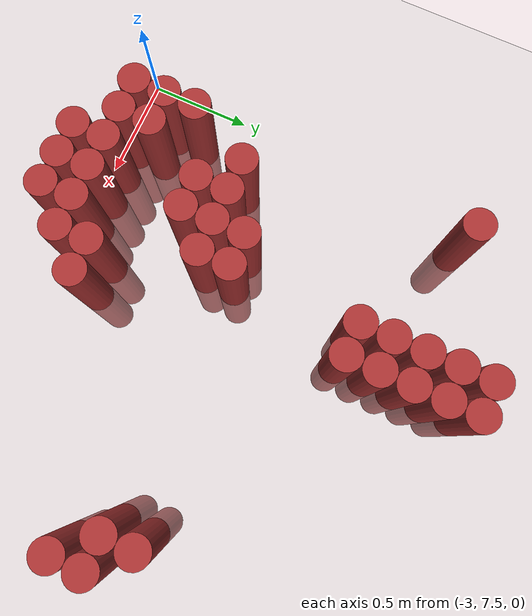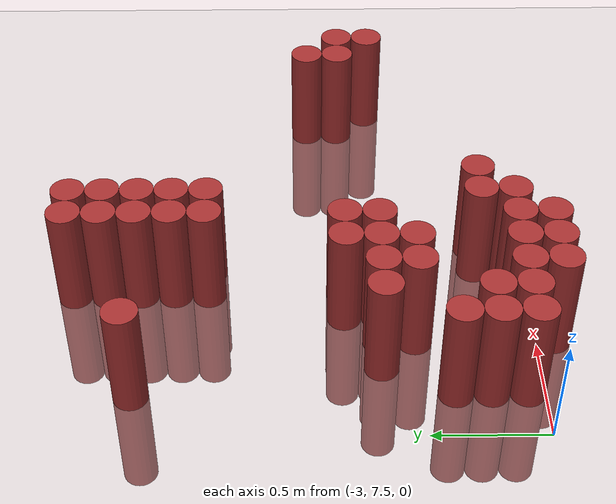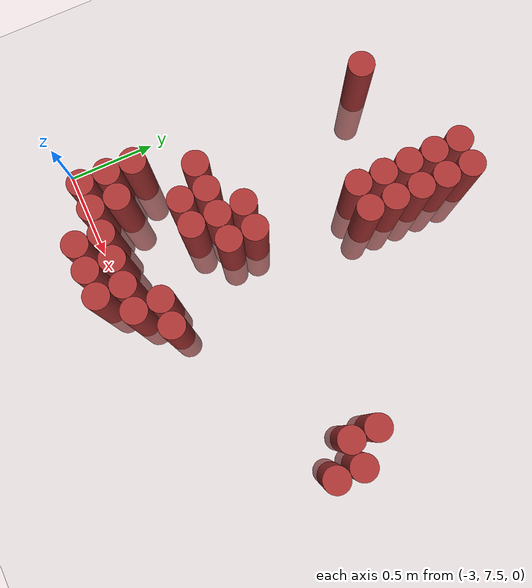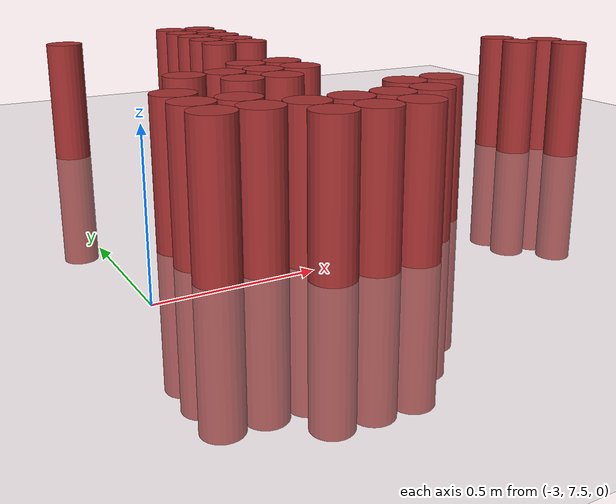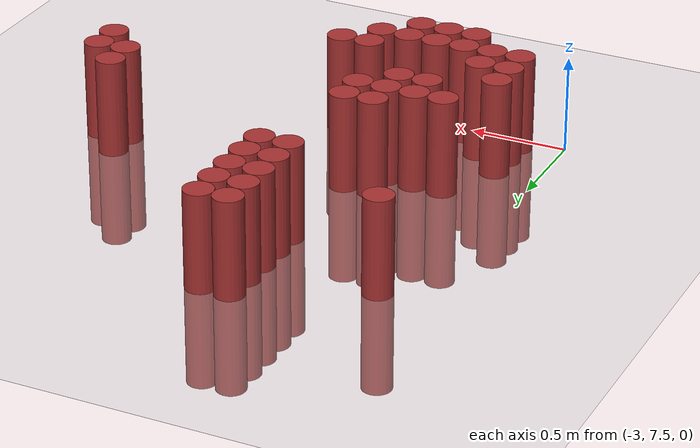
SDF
<sdf version="1.6">
 <world name="default">
  <model name="ground_plane">
   <static>1</static>
   <link name="link">
    <collision name="collision">
     <geometry><plane><normal>0 0 1</normal><size>100 100</size></plane></geometry>
     <surface><friction><ode><mu>100</mu><mu2>50</mu2></ode></friction></surface>
    </collision>
    <visual name="visual">
     <cast_shadows>0</cast_shadows>
     <geometry><plane><normal>0 0 1</normal><size>100 100</size></plane></geometry>
     <material>
      <script><uri>file://media/materials/scripts/gazebo.material</uri><name>Gazebo/Grey</name></script>
     </material>
    </visual>
   </link>
  </model>
  <model name="unit_cylinder_188">
   <static>1</static>
   <pose>-2.775000 7.575000 0.000000 0.000000 0.000000 0.000000</pose>
   <link name="link">
    <inertial>
     <mass>1</mass>
     <inertia><ixx>0.145833</ixx><ixy>0</ixy><ixz>0</ixz><iyy>0.145833</iyy><iyz>0</iyz><izz>0.125</izz></inertia>
    </inertial>
    <collision name="collision">
     <geometry><cylinder><radius>0.075000</radius><length>1</length></cylinder></geometry>
    </collision>
    <visual name="visual">
     <geometry><cylinder><radius>0.075000</radius><length>1</length></cylinder></geometry>
     <material>
      <ambient>0.648000 0.192000 0.192000 1</ambient>
      <diffuse>0.648000 0.192000 0.192000 1</diffuse>
     </material>
     <material>
      <script><name>Gazebo/Grey</name><uri>file://media/materials/scripts/gazebo.material</uri></script>
     </material>
    </visual>
    <sensor name="sensor_contact" type="contact"><contact><collision>collision</collision></contact></sensor>
   </link>
   <plugin filename="gz-sim-touchplugin-system" name="gz::sim::systems::TouchPlugin">
    <target>robot</target>
    <namespace>robot</namespace>
    <time>0.001</time>
    <enabled>true</enabled>
   </plugin>
  </model>
  <model name="unit_cylinder_189">
   <static>1</static>
   <pose>-2.775000 7.725000 0.000000 0.000000 0.000000 0.000000</pose>
   <link name="link">
    <inertial>
     <mass>1</mass>
     <inertia><ixx>0.145833</ixx><ixy>0</ixy><ixz>0</ixz><iyy>0.145833</iyy><iyz>0</iyz><izz>0.125</izz></inertia>
    </inertial>
    <collision name="collision">
     <geometry><cylinder><radius>0.075000</radius><length>1</length></cylinder></geometry>
    </collision>
    <visual name="visual">
     <geometry><cylinder><radius>0.075000</radius><length>1</length></cylinder></geometry>
     <material>
      <ambient>0.648000 0.192000 0.192000 1</ambient>
      <diffuse>0.648000 0.192000 0.192000 1</diffuse>
     </material>
     <material>
      <script><name>Gazebo/Grey</name><uri>file://media/materials/scripts/gazebo.material</uri></script>
     </material>
    </visual>
    <sensor name="sensor_contact" type="contact"><contact><collision>collision</collision></contact></sensor>
   </link>
   <plugin filename="gz-sim-touchplugin-system" name="gz::sim::systems::TouchPlugin">
    <target>robot</target>
    <namespace>robot</namespace>
    <time>0.001</time>
    <enabled>true</enabled>
   </plugin>
  </model>
  <model name="unit_cylinder_190">
   <static>1</static>
   <pose>-2.775000 7.875000 0.000000 0.000000 0.000000 0.000000</pose>
   <link name="link">
    <inertial>
     <mass>1</mass>
     <inertia><ixx>0.145833</ixx><ixy>0</ixy><ixz>0</ixz><iyy>0.145833</iyy><iyz>0</iyz><izz>0.125</izz></inertia>
    </inertial>
    <collision name="collision">
     <geometry><cylinder><radius>0.075000</radius><length>1</length></cylinder></geometry>
    </collision>
    <visual name="visual">
     <geometry><cylinder><radius>0.075000</radius><length>1</length></cylinder></geometry>
     <material>
      <ambient>0.648000 0.192000 0.192000 1</ambient>
      <diffuse>0.648000 0.192000 0.192000 1</diffuse>
     </material>
     <material>
      <script><name>Gazebo/Grey</name><uri>file://media/materials/scripts/gazebo.material</uri></script>
     </material>
    </visual>
    <sensor name="sensor_contact" type="contact"><contact><collision>collision</collision></contact></sensor>
   </link>
   <plugin filename="gz-sim-touchplugin-system" name="gz::sim::systems::TouchPlugin">
    <target>robot</target>
    <namespace>robot</namespace>
    <time>0.001</time>
    <enabled>true</enabled>
   </plugin>
  </model>
  <model name="unit_cylinder_191">
   <static>1</static>
   <pose>-2.775000 9.225000 0.000000 0.000000 0.000000 0.000000</pose>
   <link name="link">
    <inertial>
     <mass>1</mass>
     <inertia><ixx>0.145833</ixx><ixy>0</ixy><ixz>0</ixz><iyy>0.145833</iyy><iyz>0</iyz><izz>0.125</izz></inertia>
    </inertial>
    <collision name="collision">
     <geometry><cylinder><radius>0.075000</radius><length>1</length></cylinder></geometry>
    </collision>
    <visual name="visual">
     <geometry><cylinder><radius>0.075000</radius><length>1</length></cylinder></geometry>
     <material>
      <ambient>0.648000 0.192000 0.192000 1</ambient>
      <diffuse>0.648000 0.192000 0.192000 1</diffuse>
     </material>
     <material>
      <script><name>Gazebo/Grey</name><uri>file://media/materials/scripts/gazebo.material</uri></script>
     </material>
    </visual>
    <sensor name="sensor_contact" type="contact"><contact><collision>collision</collision></contact></sensor>
   </link>
   <plugin filename="gz-sim-touchplugin-system" name="gz::sim::systems::TouchPlugin">
    <target>robot</target>
    <namespace>robot</namespace>
    <time>0.001</time>
    <enabled>true</enabled>
   </plugin>
  </model>
  <model name="unit_cylinder_195">
   <static>1</static>
   <pose>-2.625000 7.575000 0.000000 0.000000 0.000000 0.000000</pose>
   <link name="link">
    <inertial>
     <mass>1</mass>
     <inertia><ixx>0.145833</ixx><ixy>0</ixy><ixz>0</ixz><iyy>0.145833</iyy><iyz>0</iyz><izz>0.125</izz></inertia>
    </inertial>
    <collision name="collision">
     <geometry><cylinder><radius>0.075000</radius><length>1</length></cylinder></geometry>
    </collision>
    <visual name="visual">
     <geometry><cylinder><radius>0.075000</radius><length>1</length></cylinder></geometry>
     <material>
      <ambient>0.648000 0.192000 0.192000 1</ambient>
      <diffuse>0.648000 0.192000 0.192000 1</diffuse>
     </material>
     <material>
      <script><name>Gazebo/Grey</name><uri>file://media/materials/scripts/gazebo.material</uri></script>
     </material>
    </visual>
    <sensor name="sensor_contact" type="contact"><contact><collision>collision</collision></contact></sensor>
   </link>
   <plugin filename="gz-sim-touchplugin-system" name="gz::sim::systems::TouchPlugin">
    <target>robot</target>
    <namespace>robot</namespace>
    <time>0.001</time>
    <enabled>true</enabled>
   </plugin>
  </model>
  <model name="unit_cylinder_196">
   <static>1</static>
   <pose>-2.625000 7.725000 0.000000 0.000000 0.000000 0.000000</pose>
   <link name="link">
    <inertial>
     <mass>1</mass>
     <inertia><ixx>0.145833</ixx><ixy>0</ixy><ixz>0</ixz><iyy>0.145833</iyy><iyz>0</iyz><izz>0.125</izz></inertia>
    </inertial>
    <collision name="collision">
     <geometry><cylinder><radius>0.075000</radius><length>1</length></cylinder></geometry>
    </collision>
    <visual name="visual">
     <geometry><cylinder><radius>0.075000</radius><length>1</length></cylinder></geometry>
     <material>
      <ambient>0.648000 0.192000 0.192000 1</ambient>
      <diffuse>0.648000 0.192000 0.192000 1</diffuse>
     </material>
     <material>
      <script><name>Gazebo/Grey</name><uri>file://media/materials/scripts/gazebo.material</uri></script>
     </material>
    </visual>
    <sensor name="sensor_contact" type="contact"><contact><collision>collision</collision></contact></sensor>
   </link>
   <plugin filename="gz-sim-touchplugin-system" name="gz::sim::systems::TouchPlugin">
    <target>robot</target>
    <namespace>robot</namespace>
    <time>0.001</time>
    <enabled>true</enabled>
   </plugin>
  </model>
  <model name="unit_cylinder_197">
   <static>1</static>
   <pose>-2.625000 8.175000 0.000000 0.000000 0.000000 0.000000</pose>
   <link name="link">
    <inertial>
     <mass>1</mass>
     <inertia><ixx>0.145833</ixx><ixy>0</ixy><ixz>0</ixz><iyy>0.145833</iyy><iyz>0</iyz><izz>0.125</izz></inertia>
    </inertial>
    <collision name="collision">
     <geometry><cylinder><radius>0.075000</radius><length>1</length></cylinder></geometry>
    </collision>
    <visual name="visual">
     <geometry><cylinder><radius>0.075000</radius><length>1</length></cylinder></geometry>
     <material>
      <ambient>0.648000 0.192000 0.192000 1</ambient>
      <diffuse>0.648000 0.192000 0.192000 1</diffuse>
     </material>
     <material>
      <script><name>Gazebo/Grey</name><uri>file://media/materials/scripts/gazebo.material</uri></script>
     </material>
    </visual>
    <sensor name="sensor_contact" type="contact"><contact><collision>collision</collision></contact></sensor>
   </link>
   <plugin filename="gz-sim-touchplugin-system" name="gz::sim::systems::TouchPlugin">
    <target>robot</target>
    <namespace>robot</namespace>
    <time>0.001</time>
    <enabled>true</enabled>
   </plugin>
  </model>
  <model name="unit_cylinder_201">
   <static>1</static>
   <pose>-2.475000 7.425000 0.000000 0.000000 0.000000 0.000000</pose>
   <link name="link">
    <inertial>
     <mass>1</mass>
     <inertia><ixx>0.145833</ixx><ixy>0</ixy><ixz>0</ixz><iyy>0.145833</iyy><iyz>0</iyz><izz>0.125</izz></inertia>
    </inertial>
    <collision name="collision">
     <geometry><cylinder><radius>0.075000</radius><length>1</length></cylinder></geometry>
    </collision>
    <visual name="visual">
     <geometry><cylinder><radius>0.075000</radius><length>1</length></cylinder></geometry>
     <material>
      <ambient>0.648000 0.192000 0.192000 1</ambient>
      <diffuse>0.648000 0.192000 0.192000 1</diffuse>
     </material>
     <material>
      <script><name>Gazebo/Grey</name><uri>file://media/materials/scripts/gazebo.material</uri></script>
     </material>
    </visual>
    <sensor name="sensor_contact" type="contact"><contact><collision>collision</collision></contact></sensor>
   </link>
   <plugin filename="gz-sim-touchplugin-system" name="gz::sim::systems::TouchPlugin">
    <target>robot</target>
    <namespace>robot</namespace>
    <time>0.001</time>
    <enabled>true</enabled>
   </plugin>
  </model>
  <model name="unit_cylinder_202">
   <static>1</static>
   <pose>-2.475000 7.575000 0.000000 0.000000 0.000000 0.000000</pose>
   <link name="link">
    <inertial>
     <mass>1</mass>
     <inertia><ixx>0.145833</ixx><ixy>0</ixy><ixz>0</ixz><iyy>0.145833</iyy><iyz>0</iyz><izz>0.125</izz></inertia>
    </inertial>
    <collision name="collision">
     <geometry><cylinder><radius>0.075000</radius><length>1</length></cylinder></geometry>
    </collision>
    <visual name="visual">
     <geometry><cylinder><radius>0.075000</radius><length>1</length></cylinder></geometry>
     <material>
      <ambient>0.648000 0.192000 0.192000 1</ambient>
      <diffuse>0.648000 0.192000 0.192000 1</diffuse>
     </material>
     <material>
      <script><name>Gazebo/Grey</name><uri>file://media/materials/scripts/gazebo.material</uri></script>
     </material>
    </visual>
    <sensor name="sensor_contact" type="contact"><contact><collision>collision</collision></contact></sensor>
   </link>
   <plugin filename="gz-sim-touchplugin-system" name="gz::sim::systems::TouchPlugin">
    <target>robot</target>
    <namespace>robot</namespace>
    <time>0.001</time>
    <enabled>true</enabled>
   </plugin>
  </model>
  <model name="unit_cylinder_203">
   <static>1</static>
   <pose>-2.475000 8.025000 0.000000 0.000000 0.000000 0.000000</pose>
   <link name="link">
    <inertial>
     <mass>1</mass>
     <inertia><ixx>0.145833</ixx><ixy>0</ixy><ixz>0</ixz><iyy>0.145833</iyy><iyz>0</iyz><izz>0.125</izz></inertia>
    </inertial>
    <collision name="collision">
     <geometry><cylinder><radius>0.075000</radius><length>1</length></cylinder></geometry>
    </collision>
    <visual name="visual">
     <geometry><cylinder><radius>0.075000</radius><length>1</length></cylinder></geometry>
     <material>
      <ambient>0.648000 0.192000 0.192000 1</ambient>
      <diffuse>0.648000 0.192000 0.192000 1</diffuse>
     </material>
     <material>
      <script><name>Gazebo/Grey</name><uri>file://media/materials/scripts/gazebo.material</uri></script>
     </material>
    </visual>
    <sensor name="sensor_contact" type="contact"><contact><collision>collision</collision></contact></sensor>
   </link>
   <plugin filename="gz-sim-touchplugin-system" name="gz::sim::systems::TouchPlugin">
    <target>robot</target>
    <namespace>robot</namespace>
    <time>0.001</time>
    <enabled>true</enabled>
   </plugin>
  </model>
  <model name="unit_cylinder_204">
   <static>1</static>
   <pose>-2.475000 8.175000 0.000000 0.000000 0.000000 0.000000</pose>
   <link name="link">
    <inertial>
     <mass>1</mass>
     <inertia><ixx>0.145833</ixx><ixy>0</ixy><ixz>0</ixz><iyy>0.145833</iyy><iyz>0</iyz><izz>0.125</izz></inertia>
    </inertial>
    <collision name="collision">
     <geometry><cylinder><radius>0.075000</radius><length>1</length></cylinder></geometry>
    </collision>
    <visual name="visual">
     <geometry><cylinder><radius>0.075000</radius><length>1</length></cylinder></geometry>
     <material>
      <ambient>0.648000 0.192000 0.192000 1</ambient>
      <diffuse>0.648000 0.192000 0.192000 1</diffuse>
     </material>
     <material>
      <script><name>Gazebo/Grey</name><uri>file://media/materials/scripts/gazebo.material</uri></script>
     </material>
    </visual>
    <sensor name="sensor_contact" type="contact"><contact><collision>collision</collision></contact></sensor>
   </link>
   <plugin filename="gz-sim-touchplugin-system" name="gz::sim::systems::TouchPlugin">
    <target>robot</target>
    <namespace>robot</namespace>
    <time>0.001</time>
    <enabled>true</enabled>
   </plugin>
  </model>
  <model name="unit_cylinder_208">
   <static>1</static>
   <pose>-2.325000 7.425000 0.000000 0.000000 0.000000 0.000000</pose>
   <link name="link">
    <inertial>
     <mass>1</mass>
     <inertia><ixx>0.145833</ixx><ixy>0</ixy><ixz>0</ixz><iyy>0.145833</iyy><iyz>0</iyz><izz>0.125</izz></inertia>
    </inertial>
    <collision name="collision">
     <geometry><cylinder><radius>0.075000</radius><length>1</length></cylinder></geometry>
    </collision>
    <visual name="visual">
     <geometry><cylinder><radius>0.075000</radius><length>1</length></cylinder></geometry>
     <material>
      <ambient>0.648000 0.192000 0.192000 1</ambient>
      <diffuse>0.648000 0.192000 0.192000 1</diffuse>
     </material>
     <material>
      <script><name>Gazebo/Grey</name><uri>file://media/materials/scripts/gazebo.material</uri></script>
     </material>
    </visual>
    <sensor name="sensor_contact" type="contact"><contact><collision>collision</collision></contact></sensor>
   </link>
   <plugin filename="gz-sim-touchplugin-system" name="gz::sim::systems::TouchPlugin">
    <target>robot</target>
    <namespace>robot</namespace>
    <time>0.001</time>
    <enabled>true</enabled>
   </plugin>
  </model>
  <model name="unit_cylinder_209">
   <static>1</static>
   <pose>-2.325000 7.575000 0.000000 0.000000 0.000000 0.000000</pose>
   <link name="link">
    <inertial>
     <mass>1</mass>
     <inertia><ixx>0.145833</ixx><ixy>0</ixy><ixz>0</ixz><iyy>0.145833</iyy><iyz>0</iyz><izz>0.125</izz></inertia>
    </inertial>
    <collision name="collision">
     <geometry><cylinder><radius>0.075000</radius><length>1</length></cylinder></geometry>
    </collision>
    <visual name="visual">
     <geometry><cylinder><radius>0.075000</radius><length>1</length></cylinder></geometry>
     <material>
      <ambient>0.648000 0.192000 0.192000 1</ambient>
      <diffuse>0.648000 0.192000 0.192000 1</diffuse>
     </material>
     <material>
      <script><name>Gazebo/Grey</name><uri>file://media/materials/scripts/gazebo.material</uri></script>
     </material>
    </visual>
    <sensor name="sensor_contact" type="contact"><contact><collision>collision</collision></contact></sensor>
   </link>
   <plugin filename="gz-sim-touchplugin-system" name="gz::sim::systems::TouchPlugin">
    <target>robot</target>
    <namespace>robot</namespace>
    <time>0.001</time>
    <enabled>true</enabled>
   </plugin>
  </model>
  <model name="unit_cylinder_210">
   <static>1</static>
   <pose>-2.325000 8.025000 0.000000 0.000000 0.000000 0.000000</pose>
   <link name="link">
    <inertial>
     <mass>1</mass>
     <inertia><ixx>0.145833</ixx><ixy>0</ixy><ixz>0</ixz><iyy>0.145833</iyy><iyz>0</iyz><izz>0.125</izz></inertia>
    </inertial>
    <collision name="collision">
     <geometry><cylinder><radius>0.075000</radius><length>1</length></cylinder></geometry>
    </collision>
    <visual name="visual">
     <geometry><cylinder><radius>0.075000</radius><length>1</length></cylinder></geometry>
     <material>
      <ambient>0.648000 0.192000 0.192000 1</ambient>
      <diffuse>0.648000 0.192000 0.192000 1</diffuse>
     </material>
     <material>
      <script><name>Gazebo/Grey</name><uri>file://media/materials/scripts/gazebo.material</uri></script>
     </material>
    </visual>
    <sensor name="sensor_contact" type="contact"><contact><collision>collision</collision></contact></sensor>
   </link>
   <plugin filename="gz-sim-touchplugin-system" name="gz::sim::systems::TouchPlugin">
    <target>robot</target>
    <namespace>robot</namespace>
    <time>0.001</time>
    <enabled>true</enabled>
   </plugin>
  </model>
  <model name="unit_cylinder_211">
   <static>1</static>
   <pose>-2.325000 8.175000 0.000000 0.000000 0.000000 0.000000</pose>
   <link name="link">
    <inertial>
     <mass>1</mass>
     <inertia><ixx>0.145833</ixx><ixy>0</ixy><ixz>0</ixz><iyy>0.145833</iyy><iyz>0</iyz><izz>0.125</izz></inertia>
    </inertial>
    <collision name="collision">
     <geometry><cylinder><radius>0.075000</radius><length>1</length></cylinder></geometry>
    </collision>
    <visual name="visual">
     <geometry><cylinder><radius>0.075000</radius><length>1</length></cylinder></geometry>
     <material>
      <ambient>0.648000 0.192000 0.192000 1</ambient>
      <diffuse>0.648000 0.192000 0.192000 1</diffuse>
     </material>
     <material>
      <script><name>Gazebo/Grey</name><uri>file://media/materials/scripts/gazebo.material</uri></script>
     </material>
    </visual>
    <sensor name="sensor_contact" type="contact"><contact><collision>collision</collision></contact></sensor>
   </link>
   <plugin filename="gz-sim-touchplugin-system" name="gz::sim::systems::TouchPlugin">
    <target>robot</target>
    <namespace>robot</namespace>
    <time>0.001</time>
    <enabled>true</enabled>
   </plugin>
  </model>
  <model name="unit_cylinder_212">
   <static>1</static>
   <pose>-2.325000 8.325000 0.000000 0.000000 0.000000 0.000000</pose>
   <link name="link">
    <inertial>
     <mass>1</mass>
     <inertia><ixx>0.145833</ixx><ixy>0</ixy><ixz>0</ixz><iyy>0.145833</iyy><iyz>0</iyz><izz>0.125</izz></inertia>
    </inertial>
    <collision name="collision">
     <geometry><cylinder><radius>0.075000</radius><length>1</length></cylinder></geometry>
    </collision>
    <visual name="visual">
     <geometry><cylinder><radius>0.075000</radius><length>1</length></cylinder></geometry>
     <material>
      <ambient>0.648000 0.192000 0.192000 1</ambient>
      <diffuse>0.648000 0.192000 0.192000 1</diffuse>
     </material>
     <material>
      <script><name>Gazebo/Grey</name><uri>file://media/materials/scripts/gazebo.material</uri></script>
     </material>
    </visual>
    <sensor name="sensor_contact" type="contact"><contact><collision>collision</collision></contact></sensor>
   </link>
   <plugin filename="gz-sim-touchplugin-system" name="gz::sim::systems::TouchPlugin">
    <target>robot</target>
    <namespace>robot</namespace>
    <time>0.001</time>
    <enabled>true</enabled>
   </plugin>
  </model>
  <model name="unit_cylinder_218">
   <static>1</static>
   <pose>-2.175000 7.425000 0.000000 0.000000 0.000000 0.000000</pose>
   <link name="link">
    <inertial>
     <mass>1</mass>
     <inertia><ixx>0.145833</ixx><ixy>0</ixy><ixz>0</ixz><iyy>0.145833</iyy><iyz>0</iyz><izz>0.125</izz></inertia>
    </inertial>
    <collision name="collision">
     <geometry><cylinder><radius>0.075000</radius><length>1</length></cylinder></geometry>
    </collision>
    <visual name="visual">
     <geometry><cylinder><radius>0.075000</radius><length>1</length></cylinder></geometry>
     <material>
      <ambient>0.648000 0.192000 0.192000 1</ambient>
      <diffuse>0.648000 0.192000 0.192000 1</diffuse>
     </material>
     <material>
      <script><name>Gazebo/Grey</name><uri>file://media/materials/scripts/gazebo.material</uri></script>
     </material>
    </visual>
    <sensor name="sensor_contact" type="contact"><contact><collision>collision</collision></contact></sensor>
   </link>
   <plugin filename="gz-sim-touchplugin-system" name="gz::sim::systems::TouchPlugin">
    <target>robot</target>
    <namespace>robot</namespace>
    <time>0.001</time>
    <enabled>true</enabled>
   </plugin>
  </model>
  <model name="unit_cylinder_219">
   <static>1</static>
   <pose>-2.175000 7.575000 0.000000 0.000000 0.000000 0.000000</pose>
   <link name="link">
    <inertial>
     <mass>1</mass>
     <inertia><ixx>0.145833</ixx><ixy>0</ixy><ixz>0</ixz><iyy>0.145833</iyy><iyz>0</iyz><izz>0.125</izz></inertia>
    </inertial>
    <collision name="collision">
     <geometry><cylinder><radius>0.075000</radius><length>1</length></cylinder></geometry>
    </collision>
    <visual name="visual">
     <geometry><cylinder><radius>0.075000</radius><length>1</length></cylinder></geometry>
     <material>
      <ambient>0.648000 0.192000 0.192000 1</ambient>
      <diffuse>0.648000 0.192000 0.192000 1</diffuse>
     </material>
     <material>
      <script><name>Gazebo/Grey</name><uri>file://media/materials/scripts/gazebo.material</uri></script>
     </material>
    </visual>
    <sensor name="sensor_contact" type="contact"><contact><collision>collision</collision></contact></sensor>
   </link>
   <plugin filename="gz-sim-touchplugin-system" name="gz::sim::systems::TouchPlugin">
    <target>robot</target>
    <namespace>robot</namespace>
    <time>0.001</time>
    <enabled>true</enabled>
   </plugin>
  </model>
  <model name="unit_cylinder_220">
   <static>1</static>
   <pose>-2.175000 8.175000 0.000000 0.000000 0.000000 0.000000</pose>
   <link name="link">
    <inertial>
     <mass>1</mass>
     <inertia><ixx>0.145833</ixx><ixy>0</ixy><ixz>0</ixz><iyy>0.145833</iyy><iyz>0</iyz><izz>0.125</izz></inertia>
    </inertial>
    <collision name="collision">
     <geometry><cylinder><radius>0.075000</radius><length>1</length></cylinder></geometry>
    </collision>
    <visual name="visual">
     <geometry><cylinder><radius>0.075000</radius><length>1</length></cylinder></geometry>
     <material>
      <ambient>0.648000 0.192000 0.192000 1</ambient>
      <diffuse>0.648000 0.192000 0.192000 1</diffuse>
     </material>
     <material>
      <script><name>Gazebo/Grey</name><uri>file://media/materials/scripts/gazebo.material</uri></script>
     </material>
    </visual>
    <sensor name="sensor_contact" type="contact"><contact><collision>collision</collision></contact></sensor>
   </link>
   <plugin filename="gz-sim-touchplugin-system" name="gz::sim::systems::TouchPlugin">
    <target>robot</target>
    <namespace>robot</namespace>
    <time>0.001</time>
    <enabled>true</enabled>
   </plugin>
  </model>
  <model name="unit_cylinder_221">
   <static>1</static>
   <pose>-2.175000 8.325000 0.000000 0.000000 0.000000 0.000000</pose>
   <link name="link">
    <inertial>
     <mass>1</mass>
     <inertia><ixx>0.145833</ixx><ixy>0</ixy><ixz>0</ixz><iyy>0.145833</iyy><iyz>0</iyz><izz>0.125</izz></inertia>
    </inertial>
    <collision name="collision">
     <geometry><cylinder><radius>0.075000</radius><length>1</length></cylinder></geometry>
    </collision>
    <visual name="visual">
     <geometry><cylinder><radius>0.075000</radius><length>1</length></cylinder></geometry>
     <material>
      <ambient>0.648000 0.192000 0.192000 1</ambient>
      <diffuse>0.648000 0.192000 0.192000 1</diffuse>
     </material>
     <material>
      <script><name>Gazebo/Grey</name><uri>file://media/materials/scripts/gazebo.material</uri></script>
     </material>
    </visual>
    <sensor name="sensor_contact" type="contact"><contact><collision>collision</collision></contact></sensor>
   </link>
   <plugin filename="gz-sim-touchplugin-system" name="gz::sim::systems::TouchPlugin">
    <target>robot</target>
    <namespace>robot</namespace>
    <time>0.001</time>
    <enabled>true</enabled>
   </plugin>
  </model>
  <model name="unit_cylinder_222">
   <static>1</static>
   <pose>-2.175000 8.925000 0.000000 0.000000 0.000000 0.000000</pose>
   <link name="link">
    <inertial>
     <mass>1</mass>
     <inertia><ixx>0.145833</ixx><ixy>0</ixy><ixz>0</ixz><iyy>0.145833</iyy><iyz>0</iyz><izz>0.125</izz></inertia>
    </inertial>
    <collision name="collision">
     <geometry><cylinder><radius>0.075000</radius><length>1</length></cylinder></geometry>
    </collision>
    <visual name="visual">
     <geometry><cylinder><radius>0.075000</radius><length>1</length></cylinder></geometry>
     <material>
      <ambient>0.648000 0.192000 0.192000 1</ambient>
      <diffuse>0.648000 0.192000 0.192000 1</diffuse>
     </material>
     <material>
      <script><name>Gazebo/Grey</name><uri>file://media/materials/scripts/gazebo.material</uri></script>
     </material>
    </visual>
    <sensor name="sensor_contact" type="contact"><contact><collision>collision</collision></contact></sensor>
   </link>
   <plugin filename="gz-sim-touchplugin-system" name="gz::sim::systems::TouchPlugin">
    <target>robot</target>
    <namespace>robot</namespace>
    <time>0.001</time>
    <enabled>true</enabled>
   </plugin>
  </model>
  <model name="unit_cylinder_223">
   <static>1</static>
   <pose>-2.175000 9.075000 0.000000 0.000000 0.000000 0.000000</pose>
   <link name="link">
    <inertial>
     <mass>1</mass>
     <inertia><ixx>0.145833</ixx><ixy>0</ixy><ixz>0</ixz><iyy>0.145833</iyy><iyz>0</iyz><izz>0.125</izz></inertia>
    </inertial>
    <collision name="collision">
     <geometry><cylinder><radius>0.075000</radius><length>1</length></cylinder></geometry>
    </collision>
    <visual name="visual">
     <geometry><cylinder><radius>0.075000</radius><length>1</length></cylinder></geometry>
     <material>
      <ambient>0.648000 0.192000 0.192000 1</ambient>
      <diffuse>0.648000 0.192000 0.192000 1</diffuse>
     </material>
     <material>
      <script><name>Gazebo/Grey</name><uri>file://media/materials/scripts/gazebo.material</uri></script>
     </material>
    </visual>
    <sensor name="sensor_contact" type="contact"><contact><collision>collision</collision></contact></sensor>
   </link>
   <plugin filename="gz-sim-touchplugin-system" name="gz::sim::systems::TouchPlugin">
    <target>robot</target>
    <namespace>robot</namespace>
    <time>0.001</time>
    <enabled>true</enabled>
   </plugin>
  </model>
  <model name="unit_cylinder_224">
   <static>1</static>
   <pose>-2.175000 9.225000 0.000000 0.000000 0.000000 0.000000</pose>
   <link name="link">
    <inertial>
     <mass>1</mass>
     <inertia><ixx>0.145833</ixx><ixy>0</ixy><ixz>0</ixz><iyy>0.145833</iyy><iyz>0</iyz><izz>0.125</izz></inertia>
    </inertial>
    <collision name="collision">
     <geometry><cylinder><radius>0.075000</radius><length>1</length></cylinder></geometry>
    </collision>
    <visual name="visual">
     <geometry><cylinder><radius>0.075000</radius><length>1</length></cylinder></geometry>
     <material>
      <ambient>0.648000 0.192000 0.192000 1</ambient>
      <diffuse>0.648000 0.192000 0.192000 1</diffuse>
     </material>
     <material>
      <script><name>Gazebo/Grey</name><uri>file://media/materials/scripts/gazebo.material</uri></script>
     </material>
    </visual>
    <sensor name="sensor_contact" type="contact"><contact><collision>collision</collision></contact></sensor>
   </link>
   <plugin filename="gz-sim-touchplugin-system" name="gz::sim::systems::TouchPlugin">
    <target>robot</target>
    <namespace>robot</namespace>
    <time>0.001</time>
    <enabled>true</enabled>
   </plugin>
  </model>
  <model name="unit_cylinder_225">
   <static>1</static>
   <pose>-2.175000 9.375000 0.000000 0.000000 0.000000 0.000000</pose>
   <link name="link">
    <inertial>
     <mass>1</mass>
     <inertia><ixx>0.145833</ixx><ixy>0</ixy><ixz>0</ixz><iyy>0.145833</iyy><iyz>0</iyz><izz>0.125</izz></inertia>
    </inertial>
    <collision name="collision">
     <geometry><cylinder><radius>0.075000</radius><length>1</length></cylinder></geometry>
    </collision>
    <visual name="visual">
     <geometry><cylinder><radius>0.075000</radius><length>1</length></cylinder></geometry>
     <material>
      <ambient>0.648000 0.192000 0.192000 1</ambient>
      <diffuse>0.648000 0.192000 0.192000 1</diffuse>
     </material>
     <material>
      <script><name>Gazebo/Grey</name><uri>file://media/materials/scripts/gazebo.material</uri></script>
     </material>
    </visual>
    <sensor name="sensor_contact" type="contact"><contact><collision>collision</collision></contact></sensor>
   </link>
   <plugin filename="gz-sim-touchplugin-system" name="gz::sim::systems::TouchPlugin">
    <target>robot</target>
    <namespace>robot</namespace>
    <time>0.001</time>
    <enabled>true</enabled>
   </plugin>
  </model>
  <model name="unit_cylinder_226">
   <static>1</static>
   <pose>-2.175000 9.525000 0.000000 0.000000 0.000000 0.000000</pose>
   <link name="link">
    <inertial>
     <mass>1</mass>
     <inertia><ixx>0.145833</ixx><ixy>0</ixy><ixz>0</ixz><iyy>0.145833</iyy><iyz>0</iyz><izz>0.125</izz></inertia>
    </inertial>
    <collision name="collision">
     <geometry><cylinder><radius>0.075000</radius><length>1</length></cylinder></geometry>
    </collision>
    <visual name="visual">
     <geometry><cylinder><radius>0.075000</radius><length>1</length></cylinder></geometry>
     <material>
      <ambient>0.648000 0.192000 0.192000 1</ambient>
      <diffuse>0.648000 0.192000 0.192000 1</diffuse>
     </material>
     <material>
      <script><name>Gazebo/Grey</name><uri>file://media/materials/scripts/gazebo.material</uri></script>
     </material>
    </visual>
    <sensor name="sensor_contact" type="contact"><contact><collision>collision</collision></contact></sensor>
   </link>
   <plugin filename="gz-sim-touchplugin-system" name="gz::sim::systems::TouchPlugin">
    <target>robot</target>
    <namespace>robot</namespace>
    <time>0.001</time>
    <enabled>true</enabled>
   </plugin>
  </model>
  <model name="unit_cylinder_232">
   <static>1</static>
   <pose>-2.025000 7.575000 0.000000 0.000000 0.000000 0.000000</pose>
   <link name="link">
    <inertial>
     <mass>1</mass>
     <inertia><ixx>0.145833</ixx><ixy>0</ixy><ixz>0</ixz><iyy>0.145833</iyy><iyz>0</iyz><izz>0.125</izz></inertia>
    </inertial>
    <collision name="collision">
     <geometry><cylinder><radius>0.075000</radius><length>1</length></cylinder></geometry>
    </collision>
    <visual name="visual">
     <geometry><cylinder><radius>0.075000</radius><length>1</length></cylinder></geometry>
     <material>
      <ambient>0.648000 0.192000 0.192000 1</ambient>
      <diffuse>0.648000 0.192000 0.192000 1</diffuse>
     </material>
     <material>
      <script><name>Gazebo/Grey</name><uri>file://media/materials/scripts/gazebo.material</uri></script>
     </material>
    </visual>
    <sensor name="sensor_contact" type="contact"><contact><collision>collision</collision></contact></sensor>
   </link>
   <plugin filename="gz-sim-touchplugin-system" name="gz::sim::systems::TouchPlugin">
    <target>robot</target>
    <namespace>robot</namespace>
    <time>0.001</time>
    <enabled>true</enabled>
   </plugin>
  </model>
  <model name="unit_cylinder_233">
   <static>1</static>
   <pose>-2.025000 7.725000 0.000000 0.000000 0.000000 0.000000</pose>
   <link name="link">
    <inertial>
     <mass>1</mass>
     <inertia><ixx>0.145833</ixx><ixy>0</ixy><ixz>0</ixz><iyy>0.145833</iyy><iyz>0</iyz><izz>0.125</izz></inertia>
    </inertial>
    <collision name="collision">
     <geometry><cylinder><radius>0.075000</radius><length>1</length></cylinder></geometry>
    </collision>
    <visual name="visual">
     <geometry><cylinder><radius>0.075000</radius><length>1</length></cylinder></geometry>
     <material>
      <ambient>0.648000 0.192000 0.192000 1</ambient>
      <diffuse>0.648000 0.192000 0.192000 1</diffuse>
     </material>
     <material>
      <script><name>Gazebo/Grey</name><uri>file://media/materials/scripts/gazebo.material</uri></script>
     </material>
    </visual>
    <sensor name="sensor_contact" type="contact"><contact><collision>collision</collision></contact></sensor>
   </link>
   <plugin filename="gz-sim-touchplugin-system" name="gz::sim::systems::TouchPlugin">
    <target>robot</target>
    <namespace>robot</namespace>
    <time>0.001</time>
    <enabled>true</enabled>
   </plugin>
  </model>
  <model name="unit_cylinder_234">
   <static>1</static>
   <pose>-2.025000 8.925000 0.000000 0.000000 0.000000 0.000000</pose>
   <link name="link">
    <inertial>
     <mass>1</mass>
     <inertia><ixx>0.145833</ixx><ixy>0</ixy><ixz>0</ixz><iyy>0.145833</iyy><iyz>0</iyz><izz>0.125</izz></inertia>
    </inertial>
    <collision name="collision">
     <geometry><cylinder><radius>0.075000</radius><length>1</length></cylinder></geometry>
    </collision>
    <visual name="visual">
     <geometry><cylinder><radius>0.075000</radius><length>1</length></cylinder></geometry>
     <material>
      <ambient>0.648000 0.192000 0.192000 1</ambient>
      <diffuse>0.648000 0.192000 0.192000 1</diffuse>
     </material>
     <material>
      <script><name>Gazebo/Grey</name><uri>file://media/materials/scripts/gazebo.material</uri></script>
     </material>
    </visual>
    <sensor name="sensor_contact" type="contact"><contact><collision>collision</collision></contact></sensor>
   </link>
   <plugin filename="gz-sim-touchplugin-system" name="gz::sim::systems::TouchPlugin">
    <target>robot</target>
    <namespace>robot</namespace>
    <time>0.001</time>
    <enabled>true</enabled>
   </plugin>
  </model>
  <model name="unit_cylinder_235">
   <static>1</static>
   <pose>-2.025000 9.075000 0.000000 0.000000 0.000000 0.000000</pose>
   <link name="link">
    <inertial>
     <mass>1</mass>
     <inertia><ixx>0.145833</ixx><ixy>0</ixy><ixz>0</ixz><iyy>0.145833</iyy><iyz>0</iyz><izz>0.125</izz></inertia>
    </inertial>
    <collision name="collision">
     <geometry><cylinder><radius>0.075000</radius><length>1</length></cylinder></geometry>
    </collision>
    <visual name="visual">
     <geometry><cylinder><radius>0.075000</radius><length>1</length></cylinder></geometry>
     <material>
      <ambient>0.648000 0.192000 0.192000 1</ambient>
      <diffuse>0.648000 0.192000 0.192000 1</diffuse>
     </material>
     <material>
      <script><name>Gazebo/Grey</name><uri>file://media/materials/scripts/gazebo.material</uri></script>
     </material>
    </visual>
    <sensor name="sensor_contact" type="contact"><contact><collision>collision</collision></contact></sensor>
   </link>
   <plugin filename="gz-sim-touchplugin-system" name="gz::sim::systems::TouchPlugin">
    <target>robot</target>
    <namespace>robot</namespace>
    <time>0.001</time>
    <enabled>true</enabled>
   </plugin>
  </model>
  <model name="unit_cylinder_236">
   <static>1</static>
   <pose>-2.025000 9.225000 0.000000 0.000000 0.000000 0.000000</pose>
   <link name="link">
    <inertial>
     <mass>1</mass>
     <inertia><ixx>0.145833</ixx><ixy>0</ixy><ixz>0</ixz><iyy>0.145833</iyy><iyz>0</iyz><izz>0.125</izz></inertia>
    </inertial>
    <collision name="collision">
     <geometry><cylinder><radius>0.075000</radius><length>1</length></cylinder></geometry>
    </collision>
    <visual name="visual">
     <geometry><cylinder><radius>0.075000</radius><length>1</length></cylinder></geometry>
     <material>
      <ambient>0.648000 0.192000 0.192000 1</ambient>
      <diffuse>0.648000 0.192000 0.192000 1</diffuse>
     </material>
     <material>
      <script><name>Gazebo/Grey</name><uri>file://media/materials/scripts/gazebo.material</uri></script>
     </material>
    </visual>
    <sensor name="sensor_contact" type="contact"><contact><collision>collision</collision></contact></sensor>
   </link>
   <plugin filename="gz-sim-touchplugin-system" name="gz::sim::systems::TouchPlugin">
    <target>robot</target>
    <namespace>robot</namespace>
    <time>0.001</time>
    <enabled>true</enabled>
   </plugin>
  </model>
  <model name="unit_cylinder_237">
   <static>1</static>
   <pose>-2.025000 9.375000 0.000000 0.000000 0.000000 0.000000</pose>
   <link name="link">
    <inertial>
     <mass>1</mass>
     <inertia><ixx>0.145833</ixx><ixy>0</ixy><ixz>0</ixz><iyy>0.145833</iyy><iyz>0</iyz><izz>0.125</izz></inertia>
    </inertial>
    <collision name="collision">
     <geometry><cylinder><radius>0.075000</radius><length>1</length></cylinder></geometry>
    </collision>
    <visual name="visual">
     <geometry><cylinder><radius>0.075000</radius><length>1</length></cylinder></geometry>
     <material>
      <ambient>0.648000 0.192000 0.192000 1</ambient>
      <diffuse>0.648000 0.192000 0.192000 1</diffuse>
     </material>
     <material>
      <script><name>Gazebo/Grey</name><uri>file://media/materials/scripts/gazebo.material</uri></script>
     </material>
    </visual>
    <sensor name="sensor_contact" type="contact"><contact><collision>collision</collision></contact></sensor>
   </link>
   <plugin filename="gz-sim-touchplugin-system" name="gz::sim::systems::TouchPlugin">
    <target>robot</target>
    <namespace>robot</namespace>
    <time>0.001</time>
    <enabled>true</enabled>
   </plugin>
  </model>
  <model name="unit_cylinder_238">
   <static>1</static>
   <pose>-2.025000 9.525000 0.000000 0.000000 0.000000 0.000000</pose>
   <link name="link">
    <inertial>
     <mass>1</mass>
     <inertia><ixx>0.145833</ixx><ixy>0</ixy><ixz>0</ixz><iyy>0.145833</iyy><iyz>0</iyz><izz>0.125</izz></inertia>
    </inertial>
    <collision name="collision">
     <geometry><cylinder><radius>0.075000</radius><length>1</length></cylinder></geometry>
    </collision>
    <visual name="visual">
     <geometry><cylinder><radius>0.075000</radius><length>1</length></cylinder></geometry>
     <material>
      <ambient>0.648000 0.192000 0.192000 1</ambient>
      <diffuse>0.648000 0.192000 0.192000 1</diffuse>
     </material>
     <material>
      <script><name>Gazebo/Grey</name><uri>file://media/materials/scripts/gazebo.material</uri></script>
     </material>
    </visual>
    <sensor name="sensor_contact" type="contact"><contact><collision>collision</collision></contact></sensor>
   </link>
   <plugin filename="gz-sim-touchplugin-system" name="gz::sim::systems::TouchPlugin">
    <target>robot</target>
    <namespace>robot</namespace>
    <time>0.001</time>
    <enabled>true</enabled>
   </plugin>
  </model>
  <model name="unit_cylinder_241">
   <static>1</static>
   <pose>-1.875000 7.725000 0.000000 0.000000 0.000000 0.000000</pose>
   <link name="link">
    <inertial>
     <mass>1</mass>
     <inertia><ixx>0.145833</ixx><ixy>0</ixy><ixz>0</ixz><iyy>0.145833</iyy><iyz>0</iyz><izz>0.125</izz></inertia>
    </inertial>
    <collision name="collision">
     <geometry><cylinder><radius>0.075000</radius><length>1</length></cylinder></geometry>
    </collision>
    <visual name="visual">
     <geometry><cylinder><radius>0.075000</radius><length>1</length></cylinder></geometry>
     <material>
      <ambient>0.648000 0.192000 0.192000 1</ambient>
      <diffuse>0.648000 0.192000 0.192000 1</diffuse>
     </material>
     <material>
      <script><name>Gazebo/Grey</name><uri>file://media/materials/scripts/gazebo.material</uri></script>
     </material>
    </visual>
    <sensor name="sensor_contact" type="contact"><contact><collision>collision</collision></contact></sensor>
   </link>
   <plugin filename="gz-sim-touchplugin-system" name="gz::sim::systems::TouchPlugin">
    <target>robot</target>
    <namespace>robot</namespace>
    <time>0.001</time>
    <enabled>true</enabled>
   </plugin>
  </model>
  <model name="unit_cylinder_254">
   <static>1</static>
   <pose>-0.975000 8.325000 0.000000 0.000000 0.000000 0.000000</pose>
   <link name="link">
    <inertial>
     <mass>1</mass>
     <inertia><ixx>0.145833</ixx><ixy>0</ixy><ixz>0</ixz><iyy>0.145833</iyy><iyz>0</iyz><izz>0.125</izz></inertia>
    </inertial>
    <collision name="collision">
     <geometry><cylinder><radius>0.075000</radius><length>1</length></cylinder></geometry>
    </collision>
    <visual name="visual">
     <geometry><cylinder><radius>0.075000</radius><length>1</length></cylinder></geometry>
     <material>
      <ambient>0.648000 0.192000 0.192000 1</ambient>
      <diffuse>0.648000 0.192000 0.192000 1</diffuse>
     </material>
     <material>
      <script><name>Gazebo/Grey</name><uri>file://media/materials/scripts/gazebo.material</uri></script>
     </material>
    </visual>
    <sensor name="sensor_contact" type="contact"><contact><collision>collision</collision></contact></sensor>
   </link>
   <plugin filename="gz-sim-touchplugin-system" name="gz::sim::systems::TouchPlugin">
    <target>robot</target>
    <namespace>robot</namespace>
    <time>0.001</time>
    <enabled>true</enabled>
   </plugin>
  </model>
  <model name="unit_cylinder_255">
   <static>1</static>
   <pose>-0.975000 8.475000 0.000000 0.000000 0.000000 0.000000</pose>
   <link name="link">
    <inertial>
     <mass>1</mass>
     <inertia><ixx>0.145833</ixx><ixy>0</ixy><ixz>0</ixz><iyy>0.145833</iyy><iyz>0</iyz><izz>0.125</izz></inertia>
    </inertial>
    <collision name="collision">
     <geometry><cylinder><radius>0.075000</radius><length>1</length></cylinder></geometry>
    </collision>
    <visual name="visual">
     <geometry><cylinder><radius>0.075000</radius><length>1</length></cylinder></geometry>
     <material>
      <ambient>0.648000 0.192000 0.192000 1</ambient>
      <diffuse>0.648000 0.192000 0.192000 1</diffuse>
     </material>
     <material>
      <script><name>Gazebo/Grey</name><uri>file://media/materials/scripts/gazebo.material</uri></script>
     </material>
    </visual>
    <sensor name="sensor_contact" type="contact"><contact><collision>collision</collision></contact></sensor>
   </link>
   <plugin filename="gz-sim-touchplugin-system" name="gz::sim::systems::TouchPlugin">
    <target>robot</target>
    <namespace>robot</namespace>
    <time>0.001</time>
    <enabled>true</enabled>
   </plugin>
  </model>
  <model name="unit_cylinder_257">
   <static>1</static>
   <pose>-0.825000 8.175000 0.000000 0.000000 0.000000 0.000000</pose>
   <link name="link">
    <inertial>
     <mass>1</mass>
     <inertia><ixx>0.145833</ixx><ixy>0</ixy><ixz>0</ixz><iyy>0.145833</iyy><iyz>0</iyz><izz>0.125</izz></inertia>
    </inertial>
    <collision name="collision">
     <geometry><cylinder><radius>0.075000</radius><length>1</length></cylinder></geometry>
    </collision>
    <visual name="visual">
     <geometry><cylinder><radius>0.075000</radius><length>1</length></cylinder></geometry>
     <material>
      <ambient>0.648000 0.192000 0.192000 1</ambient>
      <diffuse>0.648000 0.192000 0.192000 1</diffuse>
     </material>
     <material>
      <script><name>Gazebo/Grey</name><uri>file://media/materials/scripts/gazebo.material</uri></script>
     </material>
    </visual>
    <sensor name="sensor_contact" type="contact"><contact><collision>collision</collision></contact></sensor>
   </link>
   <plugin filename="gz-sim-touchplugin-system" name="gz::sim::systems::TouchPlugin">
    <target>robot</target>
    <namespace>robot</namespace>
    <time>0.001</time>
    <enabled>true</enabled>
   </plugin>
  </model>
  <model name="unit_cylinder_258">
   <static>1</static>
   <pose>-0.825000 8.325000 0.000000 0.000000 0.000000 0.000000</pose>
   <link name="link">
    <inertial>
     <mass>1</mass>
     <inertia><ixx>0.145833</ixx><ixy>0</ixy><ixz>0</ixz><iyy>0.145833</iyy><iyz>0</iyz><izz>0.125</izz></inertia>
    </inertial>
    <collision name="collision">
     <geometry><cylinder><radius>0.075000</radius><length>1</length></cylinder></geometry>
    </collision>
    <visual name="visual">
     <geometry><cylinder><radius>0.075000</radius><length>1</length></cylinder></geometry>
     <material>
      <ambient>0.648000 0.192000 0.192000 1</ambient>
      <diffuse>0.648000 0.192000 0.192000 1</diffuse>
     </material>
     <material>
      <script><name>Gazebo/Grey</name><uri>file://media/materials/scripts/gazebo.material</uri></script>
     </material>
    </visual>
    <sensor name="sensor_contact" type="contact"><contact><collision>collision</collision></contact></sensor>
   </link>
   <plugin filename="gz-sim-touchplugin-system" name="gz::sim::systems::TouchPlugin">
    <target>robot</target>
    <namespace>robot</namespace>
    <time>0.001</time>
    <enabled>true</enabled>
   </plugin>
  </model>
 </world>
</sdf>
